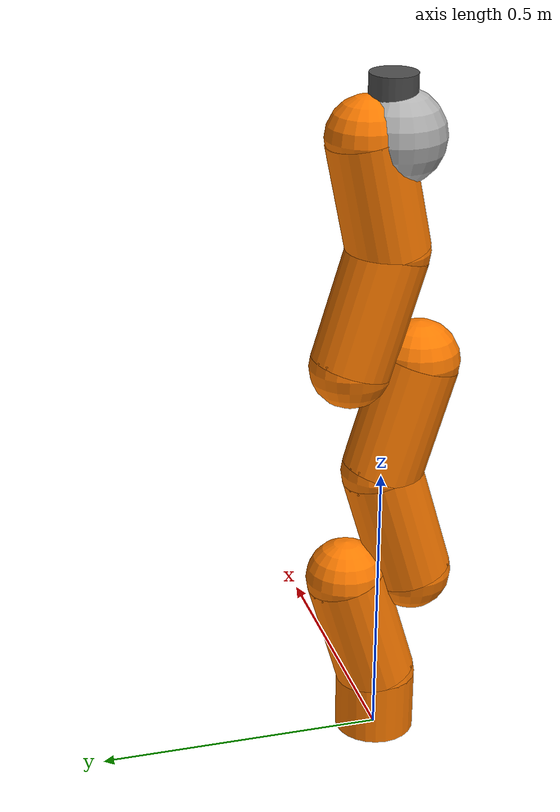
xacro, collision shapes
<?xml version="1.0"?>
<robot name="kuka_lwr" xmlns:xacro="http://www.ros.org/wiki/xacro">

	<!-- materials -->
	<xacro:include filename="$(find lwr_description)/urdf/kuka_materials.xacro"/>

	<!-- load URDF -->
	<xacro:include filename="$(find lwr_description)/urdf/kuka_lwr.xacro"/>

	<!-- gazebo and transmission models /-->
	<xacro:include filename="$(find lwr_description)/gazebo/kuka_lwr.gazebo.xacro"/>

	<!-- transmission -->
	<xacro:include filename="$(find lwr_description)/urdf/kuka_lwr.transmission.xacro"/>

	<!-- utils /-->
	<xacro:include filename="$(find lwr_description)/urdf/utils.xacro"/>

	<xacro:property name="M_PI" value="3.1415926535897931" />

	<xacro:arg name="name" default="lwr"/>
	<xacro:arg name="origin_xyz" default="0 0 0"/>
  	<xacro:arg name="origin_rpy" default="0 0 0"/>

<xacro:kuka_lwr_gazebo name="$(arg name)"/>
<xacro:kuka_lwr_transmission name="$(arg name)"/>

<!-- Fix to world just for testing -->
<link name="world"/>

 <!--lwr-->
<xacro:kuka_lwr name="$(arg name)" parent="world">  <origin xyz="$(arg origin_xyz)" rpy="$(arg origin_rpy)" />
</xacro:kuka_lwr>

</robot>

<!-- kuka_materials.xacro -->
<robot xmlns:xacro="http://www.ros.org/wiki/xacro">

  <material name="Kuka/DarkGrey">
    <color rgba="0.3 0.3 0.3 1.0"/>
  </material>

    <material name="Kuka/LightGrey">
    <color rgba="0.8 0.8 0.8 1.0"/>
  </material>

  <material name="Kuka/Red">
    <color rgba="0.8 0.0 0.0 1.0"/>
  </material>

  <material name="Kuka/Black">
    <color rgba="0 0 0 1.0"/>
  </material>

  <material name="Kuka/Orange">
    <color rgba="1.0 0.487 0 1.0"/>
  </material>

  <material name="Kuka/Silver">
    <color rgba="1.0 1.0 1.0 1.0"/>
  </material>

  <material name="Kuka/Grey">
    <color rgba="0.7 0.7 0.7 1.0"/>
  </material>

  <material name="Kuka/Blue">
    <color rgba="0.0 0.0 0.8 1.0"/>
  </material>

</robot>

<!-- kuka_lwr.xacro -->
<robot xmlns:xacro="http://www.ros.org/wiki/xacro">

	<!-- properties /-->
	<xacro:property name="M_PI" value="3.1415926535897931" />

	<xacro:property name="base_mass" value="2.0"/>
	<xacro:property name="link_mass" value="2.35"/>
    <xacro:property name="wrist_mass" value="1.1"/>
    <xacro:property name="tip_mass" value="0.25"/>
	<xacro:property name="velocity_scale" value="1"/>
	<xacro:property name="effort_scale" value="1"/>

	<xacro:property name="max_stiffness" value="5000"/>
	<xacro:property name="min_stiffness" value="0"/>
	<xacro:property name="rate_stiffness" value="20000"/> <!-- reflex to stiffness -->

	<!-- URDF model /-->
	<xacro:macro name="kuka_lwr" params="parent name *origin">

		<!-- First (shoulder) element of the arm. Fixed to its parent. -->
		<joint name="${parent}_${name}_base_joint" type="fixed">

			<xacro:insert_block name="origin"/>

			<parent link="${parent}"/>
			<child link="${name}_base_link"/>
		</joint>

		<link name="${name}_base_link">
			<inertial>
				<mass value="${base_mass}"/>
				<origin xyz="0 0 0.055"  />
				<cylinder_inertia_def radius="0.06" length="0.11" mass="${base_mass}"/>
			</inertial>
			<visual>
				<origin xyz="0 0 0" rpy="0 0 ${M_PI}"/>
				<geometry>
					<mesh filename="package://lwr_description/meshes/kukalwr_models/visual/base.STL"/>
				</geometry>
				<material name="Kuka/Orange"/>
			</visual>
			<collision>
				<origin xyz="0 0 0.055" rpy="0 0 ${M_PI}"/>
				<geometry>
					<cylinder radius="0.07" length="0.11"/>
				</geometry>
			</collision>
		</link>

		<!-- Second segment of the arm. Joint along z-axis -->
		<joint name="${name}_a1_joint" type="revolute">
			<origin xyz="0 0 0.11" rpy="0 0 0"/>
			<axis xyz="0 0 1"/>
			<limit lower="${-170 * M_PI / 180}" upper="${170 * M_PI / 180}" effort="176" velocity="${velocity_scale * 110 * M_PI / 180}" />
			<dynamics friction="10.0" damping="1.0"/>
			<parent link="${name}_base_link"/>
			<child link="${name}_1_link"/>
		</joint>

		<joint name="${name}_a1_joint_stiffness" type="revolute">
			<axis xyz="0 0 1"/>
			<limit lower="${min_stiffness}" upper="${max_stiffness}" effort="0" velocity="${rate_stiffness}" />
			<safety_controller soft_lower_limit="${min_stiffness}" soft_upper_limit="${max_stiffness}" k_position="30" k_velocity="30"/>
			<parent link="${name}_base_link"/>
			<child link="${name}_1_link_dummy"/>
		</joint>
		<link name="${name}_1_link_dummy"/>

		<link name="${name}_1_link">
			<inertial>
				<mass value="${link_mass}"/>
				<origin rpy="0 0 0" xyz="0 -0.06 0.130"/>
				<cuboid_inertia_def length="0.12" width="0.06" height="0.260" mass="${link_mass}"/>
			</inertial>
			<visual>
				<origin xyz="0 0 -0.008" rpy="0 0 ${M_PI}"/>
				<geometry>
					<mesh filename="package://lwr_description/meshes/kukalwr_models/visual/link_1.STL"/>
				</geometry>
				<material name="Kuka/Orange"/>
			</visual>
			<collision>
				<origin xyz="0 0 0.0" rpy="0 0 0"/>
				<geometry>
					<sphere radius="0.07"/>
				</geometry>
			</collision>
			<collision>
				<origin xyz="0 0.06 0.2" rpy="0 0 0"/>
				<geometry>
					<sphere radius="0.07"/>
				</geometry>
			</collision>
			<collision>
				<origin xyz="0 0.03 0.1" rpy="-0.291 0 0"/>
				<geometry>
					<cylinder radius="0.07" length="0.208"/>
				</geometry>
			</collision>
		</link>

		<!-- Third segment of the arm. Joint along y-axis -->
		<joint name="${name}_a2_joint" type="revolute">
			<origin xyz="0 0 0.2005" rpy="0 0 0"/>
			<axis xyz="0 -1 0"/>
			<limit lower="${-120 * M_PI / 180}" upper="${120 * M_PI / 180}" effort="176" velocity="${velocity_scale * 110 * M_PI / 180}" />
			<dynamics friction="10.0" damping="1.0"/>
			<parent link="${name}_1_link"/>
			<child link="${name}_2_link"/>
		</joint>

		<joint name="${name}_a2_joint_stiffness" type="revolute">
			<axis xyz="0 0 1"/>
			<limit lower="${min_stiffness}" upper="${max_stiffness}" effort="0" velocity="${rate_stiffness}" />
			<safety_controller soft_lower_limit="${min_stiffness}" soft_upper_limit="${max_stiffness}" k_position="30" k_velocity="30"/>
			<parent link="${name}_1_link"/>
			<child link="${name}_2_link_dummy"/>
		</joint>
		<link name="${name}_2_link_dummy"/>

		<link name="${name}_2_link">
			<inertial>
				<mass value="${link_mass}"/>
				<origin rpy="0 0 0" xyz="0 0.06 ${0.130 - 0.06}"/>
				<cuboid_inertia_def length="0.12" width="0.06" height="0.260" mass="${link_mass}"/>
			</inertial>

			<visual>
				<origin xyz="0 0 0.0" rpy="0 0 ${M_PI}"/>
				<geometry>
					<mesh filename="package://lwr_description/meshes/kukalwr_models/visual/link_2.STL"/>
				</geometry>
				<material name="Kuka/Orange"/>
			</visual>
			<collision>
				<origin xyz="0 0 0.2" rpy="0 0 0"/>
				<geometry>
					<sphere radius="0.07"/>
				</geometry>
			</collision>
			<collision>
				<origin xyz="0 -0.06 0.0" rpy="0 0 0"/>
				<geometry>
					<sphere radius="0.07"/>
				</geometry>
			</collision>
			<collision>
				<origin xyz="0 -0.03 0.1" rpy="-0.291 0 0"/>
				<geometry>
					<cylinder radius="0.07" length="0.208"/>
				</geometry>
			</collision>
		</link>

		<!-- Fourth element of the arm. z-axis -->
		<joint name="${name}_e1_joint" type="revolute">
			<origin xyz="0 0 0.20" rpy="0 0 0"/>
			<axis xyz="0 0 1"/>
			<limit lower="${-170 * M_PI / 180}" upper="${170 * M_PI / 180}" effort="100" velocity="${velocity_scale * 128 * M_PI / 180}" />
			<dynamics friction="10.0" damping="1.0"/>
			<parent link="${name}_2_link"/>
			<child link="${name}_3_link"/>
		</joint>

		<joint name="${name}_e1_joint_stiffness" type="revolute">
			<axis xyz="0 0 1"/>
			<limit lower="${min_stiffness}" upper="${max_stiffness}" effort="0" velocity="${rate_stiffness}" />
			<safety_controller soft_lower_limit="${min_stiffness}" soft_upper_limit="${max_stiffness}" k_position="30" k_velocity="30"/>
			<parent link="${name}_2_link"/>
			<child link="${name}_3_link_dummy"/>
		</joint>
		<link name="${name}_3_link_dummy"/>

		<link name="${name}_3_link">
			<inertial>
				<mass value="${link_mass}"/>
				<origin rpy="0 0 0" xyz="0 0.06 0.130"/>
				<cuboid_inertia_def length="0.12" width="0.06" height="0.260" mass="${link_mass}"/>
			</inertial>

			<visual>
				<origin xyz="0 0 -0.008" rpy="0 0 ${M_PI}"/>
				<geometry>
					<mesh filename="package://lwr_description/meshes/kukalwr_models/visual/link_3.STL"/>
				</geometry>
				<material name="Kuka/Orange"/>
			</visual>
			<collision>
				<origin xyz="0 0 0.0" rpy="0 0 0"/>
				<geometry>
					<sphere radius="0.07"/>
				</geometry>
			</collision>
			<collision>
				<origin xyz="0 -0.06 0.2" rpy="0 0 0"/>
				<geometry>
					<sphere radius="0.07"/>
				</geometry>
			</collision>
			<collision>
				<origin xyz="0 -0.03 0.1" rpy="0.291 0 0"/>
				<geometry>
					<cylinder radius="0.07" length="0.208"/>
				</geometry>
			</collision>
		</link>

		<!-- fifth element of the arm. x-axis -->
		<joint name="${name}_a3_joint" type="revolute">
			<origin xyz="0 0 0.20" rpy="0 0 0"/>
			<axis xyz="0 1 0"/>
			<limit lower="${-120 * M_PI / 180}" upper="${120 * M_PI / 180}" effort="100" velocity="${velocity_scale * 128 * M_PI / 180}" />
			<dynamics friction="10.0" damping="1.0"/>
			<parent link="${name}_3_link"/>
			<child link="${name}_4_link"/>
		</joint>

		<joint name="${name}_a3_joint_stiffness" type="revolute">
			<axis xyz="0 0 1"/>
			<limit lower="${min_stiffness}" upper="${max_stiffness}" effort="0" velocity="${rate_stiffness}" />
			<safety_controller soft_lower_limit="${min_stiffness}" soft_upper_limit="${max_stiffness}" k_position="30" k_velocity="30"/>
			<parent link="${name}_3_link"/>
			<child link="${name}_4_link_dummy"/>
		</joint>
		<link name="${name}_4_link_dummy"/>

		<link name="${name}_4_link">
			<inertial>
				<mass value="${link_mass}"/>
				<origin rpy="0 0 0" xyz="0 -0.06 ${0.130 - 0.06}"/>
				<cuboid_inertia_def length="0.12" width="0.06" height="0.2600" mass="${link_mass}"/>
			</inertial>

			<visual>
				<origin xyz="0 0 0.0" rpy="0 0 ${M_PI}"/>
				<geometry>
					<mesh filename="package://lwr_description/meshes/kukalwr_models/visual/link_4.STL"/>
				</geometry>
				<material name="Kuka/Orange"/>
			</visual>
			<collision>
			<origin xyz="0 0 0.2" rpy="0 0 0"/>
			<geometry>
				<sphere radius="0.07"/>
			</geometry>
			</collision>
			<collision>
				<origin xyz="0 0.06 0.0" rpy="0 0 0"/>
				<geometry>
					<sphere radius="0.07"/>
				</geometry>
			</collision>
			<collision>
				<origin xyz="0 0.03 0.1" rpy="0.291 0 0"/>
				<geometry>
					<cylinder radius="0.07" length="0.208"/>
				</geometry>
			</collision>
		</link>

		<!-- Sixth element of the arm. z-axis -->
		<joint name="${name}_a4_joint" type="revolute">
			<origin xyz="0 0 0.20" rpy="0 0 0"/>
			<axis xyz="0 0 1"/>
			<limit lower="${-170 * M_PI / 180}" upper="${170 * M_PI / 180}" effort="100" velocity="${velocity_scale * 204 * M_PI / 180}" />
			<dynamics friction="10.0" damping="1.0"/>
			<parent link="${name}_4_link"/>
			<child link="${name}_5_link"/>
		</joint>

		<joint name="${name}_a4_joint_stiffness" type="revolute">
			<axis xyz="0 0 1"/>
			<limit lower="${min_stiffness}" upper="${max_stiffness}" effort="0" velocity="${rate_stiffness}" />
			<safety_controller soft_lower_limit="${min_stiffness}" soft_upper_limit="${max_stiffness}" k_position="30" k_velocity="30"/>
			<parent link="${name}_4_link"/>
			<child link="${name}_5_link_dummy"/>
		</joint>
		<link name="${name}_5_link_dummy"/>

		<link name="${name}_5_link">
			<inertial>
				<mass value="${link_mass}"/>
				<origin rpy="0 0 0" xyz="0 0 0.124"/>
				<cuboid_inertia_def length="0.12" width="0.06" height="0.248" mass="${link_mass}"/>
			</inertial>

			<visual>
				<origin xyz="0 0 -0.008" rpy="0 0 ${M_PI}"/>
				<geometry name="${name}_5_geom">
					<mesh filename="package://lwr_description/meshes/kukalwr_models/visual/link_5.STL"/>
				</geometry>
				<material name="Kuka/Orange"/>
			</visual>

			<collision>
				<origin xyz="0 0 0.0" rpy="0 0 0"/>
				<geometry>
					<sphere radius="0.07"/>
				</geometry>
			</collision>
			<collision>
				<origin xyz="0 0.04 0.19" rpy="0 0 0"/>
				<geometry>
					<sphere radius="0.07"/>
				</geometry>
			</collision>
			<collision>
				<origin xyz="0 0.02 0.095" rpy="-0.207 0 0"/>
				<geometry>
					<cylinder radius="0.07" length="0.198"/>
				</geometry>
			</collision>
		</link>

		<!-- Seventh element of the arm. z-axis -->
		<joint name="${name}_a5_joint" type="revolute">
			<origin xyz="0 0 0.19" rpy="0 0 0"/>
			<axis xyz="0 -1 0"/>
			<limit lower="${-120 * M_PI / 180}" upper="${120 * M_PI / 180}" effort="38" velocity="${velocity_scale * 184 * M_PI / 180}" />
			<dynamics friction="10.0" damping="1.0"/>
			<parent link="${name}_5_link"/>
			<child link="${name}_6_link"/>
		</joint>

		<joint name="${name}_a5_joint_stiffness" type="revolute">
			<axis xyz="0 0 1"/>
			<limit lower="${min_stiffness}" upper="${max_stiffness}" effort="0" velocity="${rate_stiffness}" />
			<safety_controller soft_lower_limit="${min_stiffness}" soft_upper_limit="${max_stiffness}" k_position="30" k_velocity="30"/>
			<parent link="${name}_5_link"/>
			<child link="${name}_6_link_dummy"/>
		</joint>
		<link name="${name}_6_link_dummy"/>

		<link name="${name}_6_link">
			<inertial>
				<mass value="${wrist_mass}"/>
				<origin rpy="0 0 0" xyz="0 0 0.0625"/>
				<cuboid_inertia_def length="0.125" width="0.125" height="0.125" mass="${wrist_mass}"/>
			</inertial>

			<visual>
				<origin xyz="0 0 0" rpy="0 0 ${M_PI}"/>
				<geometry>
					<mesh filename="package://lwr_description/meshes/kukalwr_models/visual/link_6.STL"/>
				</geometry>
			<material name="Kuka/Grey"/>
			</visual>
			<collision>
			<origin xyz="0 -0.01 0" rpy="0 0 ${M_PI}"/>
			<geometry>
				<sphere radius="0.08"/>
			</geometry>
			</collision>
		</link>

		<!-- Eighth element of the arm. z-axis -->
		<joint name="${name}_a6_joint" type="revolute">
			<origin xyz="0 0 0.078" rpy="0 0 0"/>
			<axis xyz="0 0 1"/>
			<limit lower="${-170 * M_PI / 180}" upper="${170 * M_PI / 180}" effort="38" velocity="${velocity_scale * 184 * M_PI / 180}" />
			<dynamics friction="10.0" damping="1.0"/>
			<parent link="${name}_6_link"/>
			<child link="${name}_7_link"/>
		</joint>

		<joint name="${name}_a6_joint_stiffness" type="revolute">
			<axis xyz="0 0 1"/>
			<limit lower="${min_stiffness}" upper="${max_stiffness}" effort="0" velocity="${rate_stiffness}" />
			<safety_controller soft_lower_limit="${min_stiffness}" soft_upper_limit="${max_stiffness}" k_position="30" k_velocity="30"/>
			<parent link="${name}_6_link"/>
			<child link="${name}_7_link_dummy"/>
		</joint>
		<link name="${name}_7_link_dummy"/>

		<link name="${name}_7_link">
			<inertial>
				<mass value="${tip_mass}"/>
				<origin xyz="0 0 0"/>
				<cuboid_inertia_def length="0.1" width="0.1" height="0.1" mass="${tip_mass}"/>
			</inertial>
			<visual>
				<origin xyz="0 0 0" rpy="0 0 ${M_PI}"/>
				<geometry>
					<mesh filename="package://lwr_description/meshes/kukalwr_models/visual/link_7.STL"/>
				</geometry>
			<material name="Kuka/DarkGrey"/>
			</visual>

			<collision>
			<origin xyz="0 0 0" rpy="0 0 ${M_PI}"/>
			<geometry>
				<cylinder radius="0.04" length="0.05"/>
			</geometry>
			</collision>
		</link>

	</xacro:macro>

</robot>
